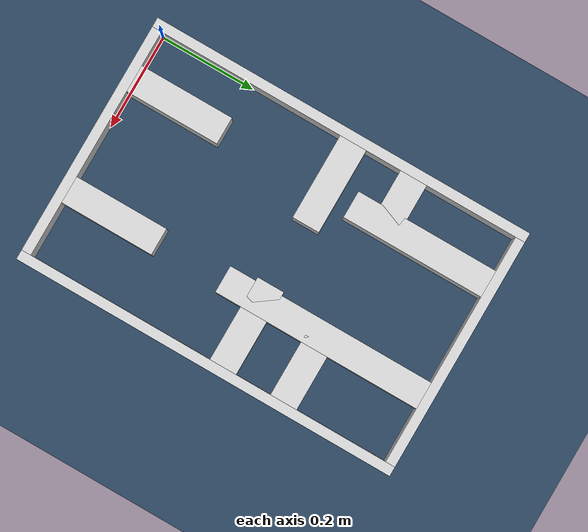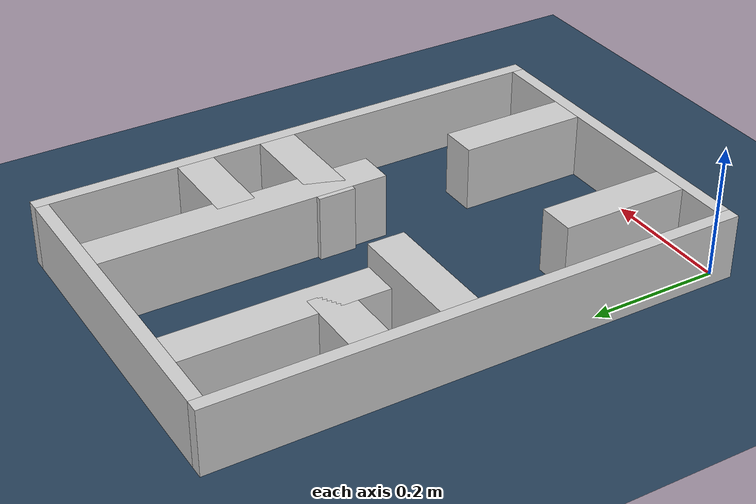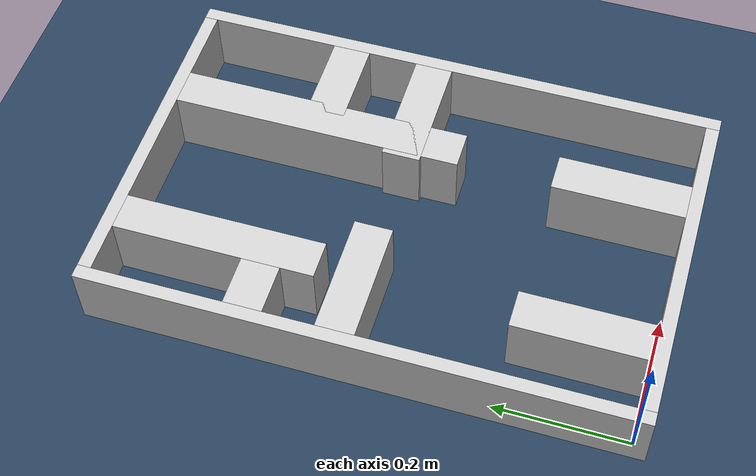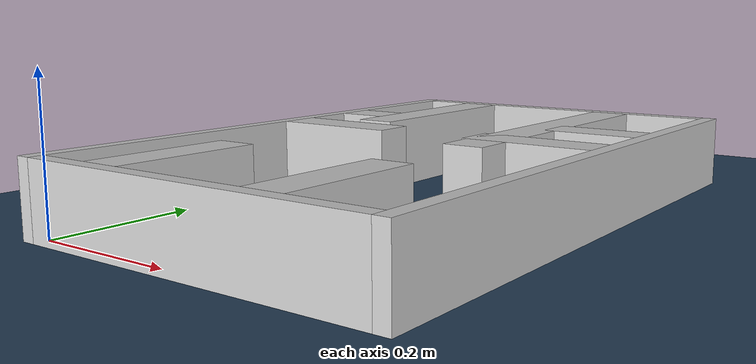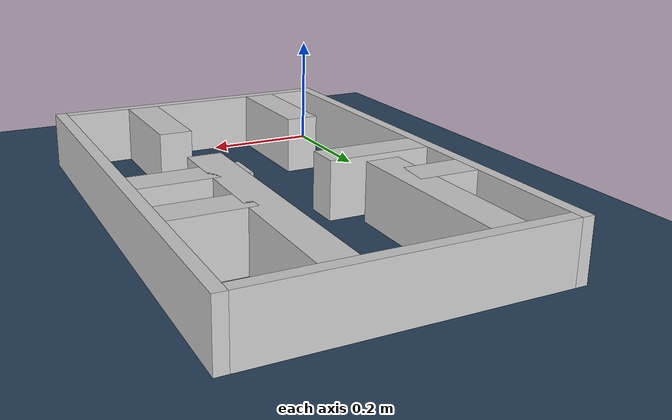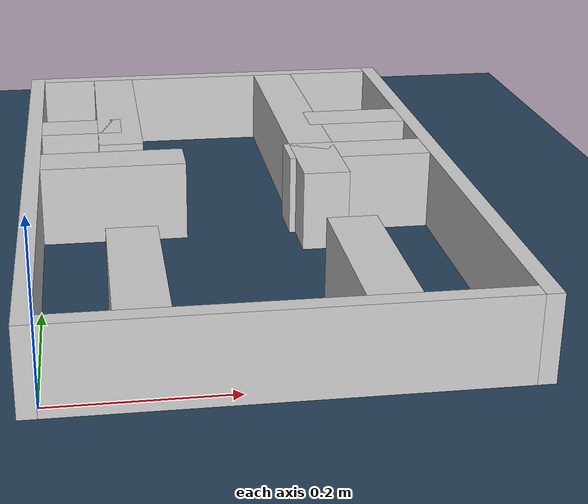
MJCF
<?xml version="1.0" ?>
<mujoco model="generated_real_template">
  <compiler angle="degree"/>
  <option timestep="0.002" integrator="implicitfast" iterations="100" cone="elliptic"/>
  <default>
    <geom density="1"/>
  </default>
  <asset>
    <texture builtin="gradient" height="3072" rgb1="0.3 0.5 0.7" rgb2="0 0 0" type="skybox" width="512"/>
    <texture builtin="checker" height="300" mark="edge" markrgb="0.8 0.8 0.8" name="groundplane" rgb1="0.2 0.3 0.4" rgb2="0.1 0.2 0.3" type="2d" width="300"/>
    <material name="groundplane" reflectance="0.2" texrepeat="5 5" texture="groundplane" texuniform="true"/>
  </asset>
  <worldbody>
    <light dir="0 0 -1" directional="true" pos="0 0 1.5"/>
    <geom name="floor" type="plane" condim="4" friction="0.5 0.005 0.001" material="groundplane" size="0 0 0.05"/>
    <body name="walls">
      <geom name="wall_boundary_left" type="box" condim="4" friction="1.0 0.005 0.0001" rgba="0.8 0.8 0.8 1" pos="-0.010000 0.387500 0.050000" euler="0 0 0.000000" size="0.010000 0.407500 0.050000"/>
      <geom name="wall_boundary_right" type="box" condim="4" friction="1.0 0.005 0.0001" rgba="0.8 0.8 0.8 1" pos="0.500000 0.387500 0.050000" euler="0 0 0.000000" size="0.010000 0.407500 0.050000"/>
      <geom name="wall_boundary_bottom" type="box" condim="4" friction="1.0 0.005 0.0001" rgba="0.8 0.8 0.8 1" pos="0.245000 -0.010000 0.050000" euler="0 0 0.000000" size="0.245000 0.010000 0.050000"/>
      <geom name="wall_boundary_top" type="box" condim="4" friction="1.0 0.005 0.0001" rgba="0.8 0.8 0.8 1" pos="0.245000 0.785000 0.050000" euler="0 0 0.000000" size="0.245000 0.010000 0.050000"/>
      <geom name="wall_inner_1_1" type="box" condim="4" friction="1.0 0.005 0.0001" rgba="0.8 0.8 0.8 1" pos="0.052561 0.552315 0.050000" euler="0 0 0.000000" size="0.052561 0.028500 0.050000"/>
      <geom name="wall_inner_1_2" type="box" condim="4" friction="1.0 0.005 0.0001" rgba="0.8 0.8 0.8 1" pos="0.424721 0.552315 0.050000" euler="0 0 0.000000" size="0.065279 0.028500 0.050000"/>
      <geom name="wall_inner_2_1" type="box" condim="4" friction="1.0 0.005 0.0001" rgba="0.8 0.8 0.8 1" pos="0.089731 0.420281 0.050000" euler="0 0 0.000000" size="0.089731 0.028500 0.050000"/>
      <geom name="wall_inner_2_2" type="box" condim="4" friction="1.0 0.005 0.0001" rgba="0.8 0.8 0.8 1" pos="0.400095 0.420281 0.050000" euler="0 0 0.000000" size="0.089905 0.028500 0.050000"/>
      <geom name="wall_inner_3_1" type="box" condim="4" friction="1.0 0.005 0.0001" rgba="0.8 0.8 0.8 1" pos="0.346399 0.098269 0.050000" euler="0 0 90.000000" size="0.098269 0.028500 0.050000"/>
      <geom name="wall_inner_3_2" type="box" condim="4" friction="1.0 0.005 0.0001" rgba="0.8 0.8 0.8 1" pos="0.346399 0.555701 0.050000" euler="0 0 90.000000" size="0.219299 0.028500 0.050000"/>
      <geom name="wall_inner_4_1" type="box" condim="4" friction="1.0 0.005 0.0001" rgba="0.8 0.8 0.8 1" pos="0.102515 0.098899 0.050000" euler="0 0 90.000000" size="0.098899 0.028500 0.050000"/>
      <geom name="wall_inner_4_2" type="box" condim="4" friction="1.0 0.005 0.0001" rgba="0.8 0.8 0.8 1" pos="0.102515 0.624911 0.050000" euler="0 0 90.000000" size="0.150089 0.028500 0.050000"/>
    </body>
  </worldbody>
</mujoco>
